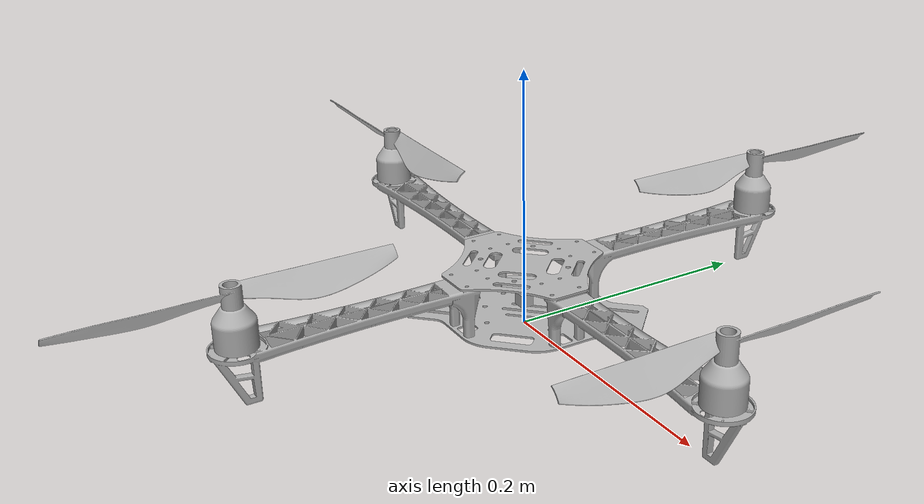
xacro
<?xml version="1.0" ?>
<robot name="f450b" xmlns:xacro="http://www.ros.org/wiki/xacro">

<xacro:include filename="$(find f450_base)/urdf/materials.xacro" />
<xacro:include filename="$(find f450_base)/urdf/f450b.trans" />
<xacro:include filename="$(find f450_base)/urdf/f450b.gazebo" />
<link name="base_link">
  <inertial>
    <origin xyz="-0.0001563325677159355 0.0019454641708941268 0.008011884215420224" rpy="0 0 0"/>
    <mass value="0.16180101306018108"/>
    <inertia ixx="0.000236" iyy="0.000237" izz="0.000474" ixy="-0.000106" iyz="-0.0" ixz="-1e-06"/>
  </inertial>
  <visual>
    <origin xyz="0 0 0" rpy="0 0 0"/>
    <geometry>
      <mesh filename="file://$(find f450_base)/meshes/base_link.stl" scale="0.001 0.001 0.001"/>
    </geometry>
    <material name="silver"/>
  </visual>
  <collision>
    <origin xyz="0 0 0" rpy="0 0 0"/>
    <geometry>
      <mesh filename="file://$(find f450_base)/meshes/base_link.stl" scale="0.001 0.001 0.001"/>
    </geometry>
  </collision>
  <enable_wind>1</enable_wind>
</link>

<link name="arm_2">
  <inertial>
    <origin xyz="0.068360672390792 0.010577406778874534 0.029122685883939594" rpy="0 0 0"/>
    <mass value="0.19520309289922932"/>
    <inertia ixx="3.8e-05" iyy="0.000921" izz="0.000922" ixy="3e-06" iyz="-0.0" ixz="1.6e-05"/>
  </inertial>
  <visual>
    <origin xyz="-0.056192 0.009351 -0.008919" rpy="0 0 0"/>
    <geometry>
      <mesh filename="file://$(find f450_base)/meshes/arm_2.stl" scale="0.001 0.001 0.001"/>
    </geometry>
    <material name="silver"/>
  </visual>
  <collision>
    <origin xyz="-0.056192 0.009351 -0.008919" rpy="0 0 0"/>
    <geometry>
      <mesh filename="file://$(find f450_base)/meshes/arm_2.stl" scale="0.001 0.001 0.001"/>
    </geometry>
  </collision>
  <enable_wind>1</enable_wind>
</link>

<link name="arm_3">
  <inertial>
    <origin xyz="-0.06848042265090791 -0.010621388792636521 0.02882417021128861" rpy="0 0 0"/>
    <mass value="0.19520309289922932"/>
    <inertia ixx="3.8e-05" iyy="0.000921" izz="0.000922" ixy="3e-06" iyz="0.0" ixz="-1.9e-05"/>
  </inertial>
  <visual>
    <origin xyz="0.0566 -0.013243 -0.008704" rpy="0 0 0"/>
    <geometry>
      <mesh filename="file://$(find f450_base)/meshes/arm_3.stl" scale="0.001 0.001 0.001"/>
    </geometry>
    <material name="silver"/>
  </visual>
  <collision>
    <origin xyz="0.0566 -0.013243 -0.008704" rpy="0 0 0"/>
    <geometry>
      <mesh filename="file://$(find f450_base)/meshes/arm_3.stl" scale="0.001 0.001 0.001"/>
    </geometry>
  </collision>
  <enable_wind>1</enable_wind>
</link>

<link name="arm_4">
  <inertial>
    <origin xyz="-0.011100166262585937 -0.06837613208364918 0.02889807701551922" rpy="0 0 0"/>
    <mass value="0.19520309289922932"/>
    <inertia ixx="0.000921" iyy="3.8e-05" izz="0.000922" ixy="-3e-06" iyz="-1.8e-05" ixz="-0.0"/>
  </inertial>
  <visual>
    <origin xyz="-0.010757 0.054516 -0.008792" rpy="0 0 0"/>
    <geometry>
      <mesh filename="file://$(find f450_base)/meshes/arm_4.stl" scale="0.001 0.001 0.001"/>
    </geometry>
    <material name="silver"/>
  </visual>
  <collision>
    <origin xyz="-0.010757 0.054516 -0.008792" rpy="0 0 0"/>
    <geometry>
      <mesh filename="file://$(find f450_base)/meshes/arm_4.stl" scale="0.001 0.001 0.001"/>
    </geometry>
  </collision>
  <enable_wind>1</enable_wind>
</link>

<link name="arm_5">
  <inertial>
    <origin xyz="-0.010658560534006191 0.06839888433381819 0.029003407517424702" rpy="0 0 0"/>
    <mass value="0.19520309289922932"/>
    <inertia ixx="0.000921" iyy="3.8e-05" izz="0.000922" ixy="-3e-06" iyz="1.7e-05" ixz="0.0"/>
  </inertial>
  <visual>
    <origin xyz="-0.009314 -0.058367 -0.008874" rpy="0 0 0"/>
    <geometry>
      <mesh filename="file://$(find f450_base)/meshes/arm_5.stl" scale="0.001 0.001 0.001"/>
    </geometry>
    <material name="silver"/>
  </visual>
  <collision>
    <origin xyz="-0.009314 -0.058367 -0.008874" rpy="0 0 0"/>
    <geometry>
      <mesh filename="file://$(find f450_base)/meshes/arm_5.stl" scale="0.001 0.001 0.001"/>
    </geometry>
  </collision>
  <enable_wind>1</enable_wind>
</link>

<link name="base_top_v10_1">
  <inertial>
    <origin xyz="-0.06251189150838855 -0.0010219774903443958 0.0006700984655056488" rpy="0 0 0"/>
    <mass value="0.1026092055375283"/>
    <inertia ixx="9.2e-05" iyy="9.2e-05" izz="0.000184" ixy="-3e-06" iyz="-0.0" ixz="-0.0"/>
  </inertial>
  <visual>
    <origin xyz="-0.061525 -0.001423 -0.047939" rpy="0 0 0"/>
    <geometry>
      <mesh filename="file://$(find f450_base)/meshes/base_top_v10_1.stl" scale="0.001 0.001 0.001"/>
    </geometry>
    <material name="silver"/>
  </visual>
  <collision>
    <origin xyz="-0.061525 -0.001423 -0.047939" rpy="0 0 0"/>
    <geometry>
      <mesh filename="file://$(find f450_base)/meshes/base_top_v10_1.stl" scale="0.001 0.001 0.001"/>
    </geometry>
  </collision>
  <enable_wind>1</enable_wind>
</link>

<link name="motor_3">
  <inertial>
    <origin xyz="-3.09526771888613e-05 -1.1568468838710037e-05 0.014843253589676232" rpy="0 0 0"/>
    <mass value="0.08230746374848247"/>
    <inertia ixx="1.2e-05" iyy="1.2e-05" izz="1.2e-05" ixy="-0.0" iyz="0.0" ixz="0.0"/>
  </inertial>
  <visual>
    <origin xyz="0.22656 -0.002921 -0.043096" rpy="0 0 0"/>
    <geometry>
      <mesh filename="file://$(find f450_base)/meshes/motor_3.stl" scale="0.001 0.001 0.001"/>
    </geometry>
    <material name="silver"/>
  </visual>
  <collision>
    <origin xyz="0.22656 -0.002921 -0.043096" rpy="0 0 0"/>
    <geometry>
      <mesh filename="file://$(find f450_base)/meshes/motor_3.stl" scale="0.001 0.001 0.001"/>
    </geometry>
  </collision>
  <enable_wind>1</enable_wind>
</link>

<link name="motor_2">
  <inertial>
    <origin xyz="-3.097451546599987e-05 -1.0986214982688924e-05 0.014843487748542085" rpy="0 0 0"/>
    <mass value="0.08230746374848247"/>
    <inertia ixx="1.2e-05" iyy="1.2e-05" izz="1.2e-05" ixy="-0.0" iyz="0.0" ixz="0.0"/>
  </inertial>
  <visual>
    <origin xyz="0.000658 0.224365 -0.043389" rpy="0 0 0"/>
    <geometry>
      <mesh filename="file://$(find f450_description)/meshes/motor_2.stl" scale="0.001 0.001 0.001"/>
    </geometry>
    <material name="silver"/>
  </visual>
  <collision>
    <origin xyz="0.000658 0.224365 -0.043389" rpy="0 0 0"/>
    <geometry>
      <mesh filename="file://$(find f450_base)/meshes/motor_2.stl" scale="0.001 0.001 0.001"/>
    </geometry>
  </collision>
  <enable_wind>1</enable_wind>
</link>

<link name="motor_4">
  <inertial>
    <origin xyz="-3.0806533986266205e-05 -1.1698907832526583e-05 0.014843625309392629" rpy="0 0 0"/>
    <mass value="0.08230746374848247"/>
    <inertia ixx="1.2e-05" iyy="1.2e-05" izz="1.2e-05" ixy="-0.0" iyz="0.0" ixz="0.0"/>
  </inertial>
  <visual>
    <origin xyz="-0.226009 -0.000919 -0.044027" rpy="0 0 0"/>
    <geometry>
      <mesh filename="file://$(find f450_base)/meshes/motor_4.stl" scale="0.001 0.001 0.001"/>
    </geometry>
    <material name="silver"/>
  </visual>
  <collision>
    <origin xyz="-0.226009 -0.000919 -0.044027" rpy="0 0 0"/>
    <geometry>
      <mesh filename="file://$(find f450_base)/meshes/motor_4.stl" scale="0.001 0.001 0.001"/>
    </geometry>
  </collision>
  <enable_wind>1</enable_wind>
</link>

<link name="motor_1">
  <inertial>
    <origin xyz="-3.0761232185650507e-05 -1.1546897757841457e-05 0.014843019588242544" rpy="0 0 0"/>
    <mass value="0.08230746374848247"/>
    <inertia ixx="1.2e-05" iyy="1.2e-05" izz="1.2e-05" ixy="-0.0" iyz="0.0" ixz="0.0"/>
  </inertial>
  <visual>
    <origin xyz="0.001053 -0.22823 -0.043732" rpy="0 0 0"/>
    <geometry>
      <mesh filename="file://$(find f450_base)/meshes/motor_1.stl" scale="0.001 0.001 0.001"/>
    </geometry>
    <material name="silver"/>
  </visual>
  <collision>
    <origin xyz="0.001053 -0.22823 -0.043732" rpy="0 0 0"/>
    <geometry>
      <mesh filename="file://$(find f450_base)/meshes/motor_1.stl" scale="0.001 0.001 0.001"/>
    </geometry>
  </collision>
  <enable_wind>1</enable_wind>
</link>

<link name="propellor_1_1">
  <inertial>
    <origin xyz="-2.1203933977420597e-05 -5.4492414743503165e-06 0.006659753036161328" rpy="0 0 0"/>
    <mass value="0.04596832624465719"/>
    <inertia ixx="2e-06" iyy="0.000173" izz="0.000173" ixy="1e-06" iyz="0.0" ixz="-0.0"/>
  </inertial>
  <visual>
    <origin xyz="0.226624 -0.002897 -0.074096" rpy="0 0 0"/>
    <geometry>
      <mesh filename="file://$(find f450_base)/meshes/propellor_1_1.stl" scale="0.001 0.001 0.001"/>
    </geometry>
    <material name="silver"/>
  </visual>
  <collision>
    <origin xyz="0.226624 -0.002897 -0.074096" rpy="0 0 0"/>
    <geometry>
      <mesh filename="file://$(find f450_base)/meshes/propellor_1_1.stl" scale="0.001 0.001 0.001"/>
    </geometry>
  </collision>
  <enable_wind>1</enable_wind>
</link>

<link name="propellor_2_2">
  <inertial>
    <origin xyz="-2.0559666656236363e-05 -8.775987938303142e-07 0.010182800691096797" rpy="0 0 0"/>
    <mass value="0.04864675101365255"/>
    <inertia ixx="0.000173" iyy="2e-06" izz="0.000173" ixy="-0.0" iyz="-0.0" ixz="0.0"/>
  </inertial>
  <visual>
    <origin xyz="0.001117 -0.228206 -0.074732" rpy="0 0 0"/>
    <geometry>
      <mesh filename="file://$(find f450_base)/meshes/propellor_2_2.stl" scale="0.001 0.001 0.001"/>
    </geometry>
    <material name="silver"/>
  </visual>
  <collision>
    <origin xyz="0.001117 -0.228206 -0.074732" rpy="0 0 0"/>
    <geometry>
      <mesh filename="file://$(find f450_base)/meshes/propellor_2_2.stl" scale="0.001 0.001 0.001"/>
    </geometry>
  </collision>
  <enable_wind>1</enable_wind>
</link>

<link name="propellor_1_2">
  <inertial>
    <origin xyz="-1.3434893079237076e-05 -1.2514295851306922e-05 0.006659998211777041" rpy="0 0 0"/>
    <mass value="0.04596832624465719"/>
    <inertia ixx="0.000173" iyy="2e-06" izz="0.000173" ixy="-1e-06" iyz="-0.0" ixz="-0.0"/>
  </inertial>
  <visual>
    <origin xyz="0.000722 0.224388 -0.074389" rpy="0 0 0"/>
    <geometry>
      <mesh filename="file://$(find f450_base)/meshes/propellor_1_2.stl" scale="0.001 0.001 0.001"/>
    </geometry>
    <material name="silver"/>
  </visual>
  <collision>
    <origin xyz="0.000722 0.224388 -0.074389" rpy="0 0 0"/>
    <geometry>
      <mesh filename="file://$(find f450_base)/meshes/propellor_1_2.stl" scale="0.001 0.001 0.001"/>
    </geometry>
  </collision>
  <enable_wind>1</enable_wind>
</link>

<link name="propellor_2_1">
  <inertial>
    <origin xyz="-2.0604968456766626e-05 -1.0296088685228131e-06 0.010183406412246923" rpy="0 0 0"/>
    <mass value="0.04864675101365255"/>
    <inertia ixx="0.000173" iyy="2e-06" izz="0.000173" ixy="-0.0" iyz="-0.0" ixz="0.0"/>
  </inertial>
  <visual>
    <origin xyz="-0.225945 -0.000895 -0.075027" rpy="0 0 0"/>
    <geometry>
      <mesh filename="file://$(find f450_base)/meshes/propellor_2_1.stl" scale="0.001 0.001 0.001"/>
    </geometry>
    <material name="silver"/>
  </visual>
  <collision>
    <origin xyz="-0.225945 -0.000895 -0.075027" rpy="0 0 0"/>
    <geometry>
      <mesh filename="file://$(find f450_base)/meshes/propellor_2_1.stl" scale="0.001 0.001 0.001"/>
    </geometry>
  </collision>
  <enable_wind>1</enable_wind>
</link>

<!-- Link del IMU -->
<link name="imu_link">
  <inertial>
    <origin xyz="0 0 0" rpy="0 0 0"/>
    <mass value="0.01"/>
    <inertia ixx="1e-6" ixy="0" ixz="0"
             iyy="1e-6" iyz="0"
             izz="1e-6"/>
  </inertial>
  <visual>
    <origin xyz="0 0 0" rpy="0 0 0"/>
    <geometry>
      <box size="0.01 0.01 0.01"/>
    </geometry>
    <material name="silver"/>
  </visual>
  <collision>
    <origin xyz="0 0 0" rpy="0 0 0"/>
    <geometry>
      <box size="0.01 0.01 0.01"/>
    </geometry>
  </collision>
</link>

<!-- Unión del IMU al cuerpo principal -->
<joint name="imu_joint" type="fixed">
  <parent link="base_link"/>
  <child link="imu_link"/>
  <origin xyz="0 0 0.02" rpy="0 0 0"/>
</joint>

<!-- Definición del sensor IMU con plugin para Gazebo -->
<gazebo reference="imu_link">
  <sensor name="imu_sensor" type="imu">
    <pose>0 0 0 0 0 0</pose>
    <always_on>true</always_on>
    <update_rate>100</update_rate>
    <visualize>false</visualize>
    <topic>imu</topic>
    <plugin name="gz::sim::systems::Imu" filename="gz-sim-imu-system"/>
  </sensor>
</gazebo>

<joint name="r_1" type="fixed">
  <origin xyz="0.056192 -0.009351 0.008919" rpy="0 0 0"/>
  <parent link="base_link"/>
  <child link="arm_2"/>
</joint>

<joint name="r_2" type="fixed">
  <origin xyz="-0.0566 0.013243 0.008704" rpy="0 0 0"/>
  <parent link="base_link"/>
  <child link="arm_3"/>
</joint>

<joint name="r_3" type="fixed">
  <origin xyz="0.010757 -0.054516 0.008792" rpy="0 0 0"/>
  <parent link="base_link"/>
  <child link="arm_4"/>
</joint>

<joint name="r_4" type="fixed">
  <origin xyz="0.009314 0.058367 0.008874" rpy="0 0 0"/>
  <parent link="base_link"/>
  <child link="arm_5"/>
</joint>

<joint name="r_5" type="fixed">
  <origin xyz="0.005333 0.010774 0.03902" rpy="0 0 0"/>
  <parent link="arm_2"/>
  <child link="base_top_v10_1"/>
</joint>

<joint name="r_8" type="fixed">
  <origin xyz="-0.16996 -0.010322 0.034392" rpy="0 0 0"/>
  <parent link="arm_3"/>
  <child link="motor_3"/>
</joint>

<joint name="r_9" type="fixed">
  <origin xyz="-0.011415 -0.169849 0.034597" rpy="0 0 0"/>
  <parent link="arm_4"/>
  <child link="motor_2"/>
</joint>

<joint name="r_10" type="fixed">
  <origin xyz="0.169817 0.01027 0.035108" rpy="0 0 0"/>
  <parent link="arm_2"/>
  <child link="motor_4"/>
</joint>

<joint name="r_11" type="fixed">
  <origin xyz="-0.010367 0.169863 0.034858" rpy="0 0 0"/>
  <parent link="arm_5"/>
  <child link="motor_1"/>
</joint>

<joint name="rev_1" type="continuous">
  <origin xyz="-6.4e-05 -2.4e-05 0.031" rpy="0 0 0"/>
  <parent link="motor_3"/>
  <child link="propellor_1_1"/>
  <axis xyz="0.002061 0.000759 -0.999998"/>
</joint>

<joint name="rev_2" type="continuous">
  <origin xyz="-6.4e-05 -2.4e-05 0.031" rpy="0 0 0"/>
  <parent link="motor_1"/>
  <child link="propellor_2_2"/>
  <axis xyz="0.002061 0.000759 -0.999998"/>
</joint>

<joint name="rev_3" type="continuous">
  <origin xyz="-6.4e-05 -2.3e-05 0.031" rpy="0 0 0"/>
  <parent link="motor_2"/>
  <child link="propellor_1_2"/>
  <axis xyz="0.002061 0.000759 -0.999998"/>
</joint>

<joint name="rev_4" type="continuous">
  <origin xyz="-6.4e-05 -2.4e-05 0.031" rpy="0 0 0"/>
  <parent link="motor_4"/>
  <child link="propellor_2_1"/>
  <axis xyz="0.002061 0.000759 -0.999998"/>
</joint>

<gazebo>
  <plugin name='gz::sim::systems::MulticopterMotorModel' filename='gz-sim-multicopter-motor-model-system'>
    <robotNamespace>f450b</robotNamespace>
    <jointName>rev_4</jointName>
    <linkName>propellor_2_1</linkName>
    <turningDirection>cw</turningDirection>
    <timeConstantUp>0.0125</timeConstantUp>
    <timeConstantDown>0.025</timeConstantDown>
    <maxRotVelocity>5000.0</maxRotVelocity>
    <motorConstant>8.54858e-06</motorConstant>
    <momentConstant>0.016</momentConstant>
    <commandSubTopic>gazebo/command/motor_speed</commandSubTopic>
    <actuator_number>0</actuator_number>
    <rotorDragCoefficient>8.06428e-05</rotorDragCoefficient>
    <rollingMomentCoefficient>1e-06</rollingMomentCoefficient>
    <motorSpeedPubTopic>motor_speed/0</motorSpeedPubTopic>
    <rotorVelocitySlowdownSim>10</rotorVelocitySlowdownSim>
    <motorType>velocity</motorType>
  </plugin>

  <plugin name='gz::sim::systems::MulticopterMotorModel' filename='gz-sim-multicopter-motor-model-system'>
    <robotNamespace>f450b</robotNamespace>
    <jointName>rev_2</jointName>
    <linkName>propellor_2_2</linkName>
    <turningDirection>cw</turningDirection>
    <timeConstantUp>0.0125</timeConstantUp>
    <timeConstantDown>0.025</timeConstantDown>
    <maxRotVelocity>5000.0</maxRotVelocity>
    <motorConstant>8.54858e-06</motorConstant>
    <momentConstant>0.016</momentConstant>
    <commandSubTopic>gazebo/command/motor_speed</commandSubTopic>
    <actuator_number>1</actuator_number>
    <rotorDragCoefficient>8.06428e-05</rotorDragCoefficient>
    <rollingMomentCoefficient>1e-06</rollingMomentCoefficient>
    <motorSpeedPubTopic>motor_speed/1</motorSpeedPubTopic>
    <rotorVelocitySlowdownSim>10</rotorVelocitySlowdownSim>
    <motorType>velocity</motorType>
  </plugin>

  <plugin name='gz::sim::systems::MulticopterMotorModel' filename='gz-sim-multicopter-motor-model-system'>
    <robotNamespace>f450b</robotNamespace>
    <jointName>rev_1</jointName>
    <linkName>propellor_1_1</linkName>
    <turningDirection>ccw</turningDirection>
    <timeConstantUp>0.0125</timeConstantUp>
    <timeConstantDown>0.025</timeConstantDown>
    <maxRotVelocity>5000.0</maxRotVelocity>
    <motorConstant>8.54858e-06</motorConstant>
    <momentConstant>0.016</momentConstant>
    <commandSubTopic>gazebo/command/motor_speed</commandSubTopic>
    <actuator_number>2</actuator_number>
    <rotorDragCoefficient>8.06428e-05</rotorDragCoefficient>
    <rollingMomentCoefficient>1e-06</rollingMomentCoefficient>
    <motorSpeedPubTopic>motor_speed/2</motorSpeedPubTopic>
    <rotorVelocitySlowdownSim>10</rotorVelocitySlowdownSim>
    <motorType>velocity</motorType>
  </plugin>

  <plugin name='gz::sim::systems::MulticopterMotorModel' filename='gz-sim-multicopter-motor-model-system'>
    <robotNamespace>f450b</robotNamespace>
    <jointName>rev_3</jointName>
    <linkName>propellor_1_2</linkName>
    <turningDirection>ccw</turningDirection>
    <timeConstantUp>0.0125</timeConstantUp>
    <timeConstantDown>0.025</timeConstantDown>
    <maxRotVelocity>5000.0</maxRotVelocity>
    <motorConstant>8.54858e-06</motorConstant>
    <momentConstant>0.016</momentConstant>
    <commandSubTopic>gazebo/command/motor_speed</commandSubTopic>
    <actuator_number>3</actuator_number>
    <rotorDragCoefficient>8.06428e-05</rotorDragCoefficient>
    <rollingMomentCoefficient>1e-06</rollingMomentCoefficient>
    <motorSpeedPubTopic>motor_speed/3</motorSpeedPubTopic>
    <rotorVelocitySlowdownSim>10</rotorVelocitySlowdownSim>
    <motorType>velocity</motorType>
  </plugin>

</gazebo>
</robot>

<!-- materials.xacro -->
<robot name="f450b" xmlns:xacro="http://www.ros.org/wiki/xacro" >

<material name="silver">
  <color rgba="0.700 0.700 0.700 1.000"/>
</material>

</robot>

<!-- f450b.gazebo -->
<robot name="f450b" xmlns:xacro="http://www.ros.org/wiki/xacro" >

<xacro:property name="body_color" value="Gazebo/Silver" />

<gazebo reference="arm_2">
  <material>${body_color}</material>
  <mu1>0.2</mu1>
  <mu2>0.2</mu2>
  <self_collide>true</self_collide>
</gazebo>

<gazebo reference="arm_3">
  <material>${body_color}</material>
  <mu1>0.2</mu1>
  <mu2>0.2</mu2>
  <self_collide>true</self_collide>
</gazebo>

<gazebo reference="arm_4">
  <material>${body_color}</material>
  <mu1>0.2</mu1>
  <mu2>0.2</mu2>
  <self_collide>true</self_collide>
</gazebo>

<gazebo reference="arm_5">
  <material>${body_color}</material>
  <mu1>0.2</mu1>
  <mu2>0.2</mu2>
  <self_collide>true</self_collide>
</gazebo>

<gazebo reference="base_top_v10_1">
  <material>${body_color}</material>
  <mu1>0.2</mu1>
  <mu2>0.2</mu2>
  <self_collide>true</self_collide>
</gazebo>

<gazebo reference="motor_3">
  <material>${body_color}</material>
  <mu1>0.2</mu1>
  <mu2>0.2</mu2>
  <self_collide>true</self_collide>
</gazebo>

<gazebo reference="motor_2">
  <material>${body_color}</material>
  <mu1>0.2</mu1>
  <mu2>0.2</mu2>
  <self_collide>true</self_collide>
</gazebo>

<gazebo reference="motor_4">
  <material>${body_color}</material>
  <mu1>0.2</mu1>
  <mu2>0.2</mu2>
  <self_collide>true</self_collide>
</gazebo>

<gazebo reference="motor_1">
  <material>${body_color}</material>
  <mu1>0.2</mu1>
  <mu2>0.2</mu2>
  <self_collide>true</self_collide>
</gazebo>

<gazebo reference="propellor_1_1">
  <material>${body_color}</material>
  <mu1>0.2</mu1>
  <mu2>0.2</mu2>
  <self_collide>true</self_collide>
</gazebo>

<gazebo reference="propellor_2_2">
  <material>${body_color}</material>
  <mu1>0.2</mu1>
  <mu2>0.2</mu2>
  <self_collide>true</self_collide>
</gazebo>

<gazebo reference="propellor_1_2">
  <material>${body_color}</material>
  <mu1>0.2</mu1>
  <mu2>0.2</mu2>
  <self_collide>true</self_collide>
</gazebo>

<gazebo reference="propellor_2_1">
  <material>${body_color}</material>
  <mu1>0.2</mu1>
  <mu2>0.2</mu2>
  <self_collide>true</self_collide>
</gazebo>

<gazebo reference="base_lidar_1">
  <material>${body_color}</material>
  <mu1>0.2</mu1>
  <mu2>0.2</mu2>
  <self_collide>true</self_collide>
</gazebo>

</robot>
